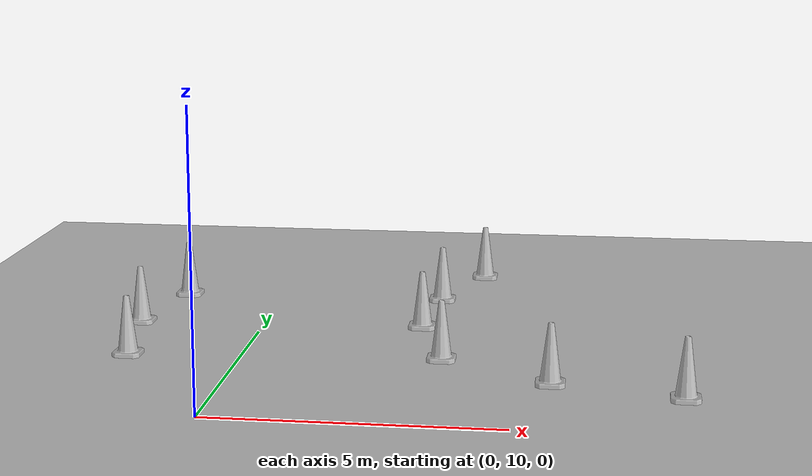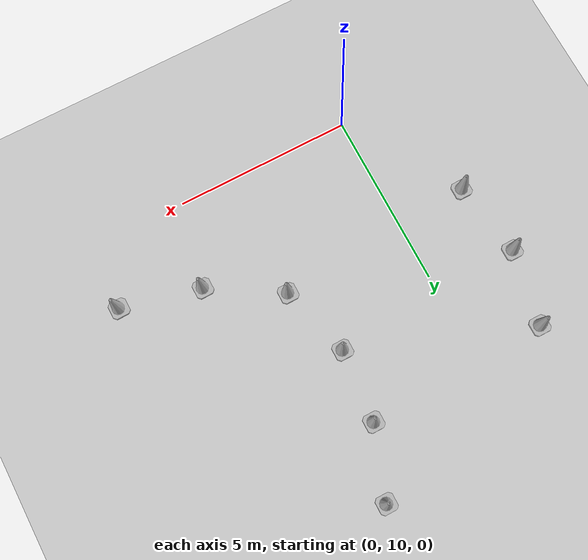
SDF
<sdf version="1.7">
 <world name="default">
  <model name="ground_plane">
   <static>1</static>
   <link name="link">
    <collision name="collision">
     <geometry><plane><normal>0 0 1</normal><size>125 125</size></plane></geometry>
     <surface>
      <contact><collide_bitmask>65535</collide_bitmask></contact>
      <friction><ode><mu>100</mu><mu2>50</mu2></ode></friction>
     </surface>
    </collision>
    <visual name="visual">
     <cast_shadows>0</cast_shadows>
     <geometry><plane><normal>0 0 1</normal><size>125 125</size></plane></geometry>
     <material>
      <script><uri>file://media/materials/scripts/gazebo.material</uri><name>Gazebo/Grey</name></script>
     </material>
    </visual>
   </link>
  </model>
  <model name="Construction Cone 87">
   <link name="link">
    <collision name="collision">
     <geometry>
      <mesh><scale>10 10 10</scale><uri>model://construction_cone/meshes/construction_cone.dae</uri></mesh>
     </geometry>
    </collision>
    <visual name="visual">
     <geometry>
      <mesh><scale>10 10 10</scale><uri>model://construction_cone/meshes/construction_cone.dae</uri></mesh>
     </geometry>
    </visual>
    <inertial>
     <inertia><ixx>1</ixx><ixy>0</ixy><ixz>0</ixz><iyy>1</iyy><iyz>0</iyz><izz>1</izz></inertia>
     <mass>1</mass>
    </inertial>
   </link>
   <pose>3.9134983811912605 19.730355827656048 0 0 0 0</pose>
  </model>
  <model name="Construction Cone 97">
   <link name="link">
    <collision name="collision">
     <geometry>
      <mesh><scale>10 10 10</scale><uri>model://construction_cone/meshes/construction_cone.dae</uri></mesh>
     </geometry>
    </collision>
    <visual name="visual">
     <geometry>
      <mesh><scale>10 10 10</scale><uri>model://construction_cone/meshes/construction_cone.dae</uri></mesh>
     </geometry>
    </visual>
    <inertial>
     <inertia><ixx>1</ixx><ixy>0</ixy><ixz>0</ixz><iyy>1</iyy><iyz>0</iyz><izz>1</izz></inertia>
     <mass>1</mass>
    </inertial>
   </link>
   <pose>3.202702926645806 17.744219464019686 0 0 0 0</pose>
  </model>
  <model name="Construction Cone 100">
   <link name="link">
    <collision name="collision">
     <geometry>
      <mesh><scale>10 10 10</scale><uri>model://construction_cone/meshes/construction_cone.dae</uri></mesh>
     </geometry>
    </collision>
    <visual name="visual">
     <geometry>
      <mesh><scale>10 10 10</scale><uri>model://construction_cone/meshes/construction_cone.dae</uri></mesh>
     </geometry>
    </visual>
    <inertial>
     <inertia><ixx>1</ixx><ixy>0</ixy><ixz>0</ixz><iyy>1</iyy><iyz>0</iyz><izz>1</izz></inertia>
     <mass>1</mass>
    </inertial>
   </link>
   <pose>-1.9567516188087382 17.574855827656044 0 0 0 0</pose>
  </model>
  <model name="Construction Cone 107">
   <link name="link">
    <collision name="collision">
     <geometry>
      <mesh><scale>10 10 10</scale><uri>model://construction_cone/meshes/construction_cone.dae</uri></mesh>
     </geometry>
    </collision>
    <visual name="visual">
     <geometry>
      <mesh><scale>10 10 10</scale><uri>model://construction_cone/meshes/construction_cone.dae</uri></mesh>
     </geometry>
    </visual>
    <inertial>
     <inertia><ixx>1</ixx><ixy>0</ixy><ixz>0</ixz><iyy>1</iyy><iyz>0</iyz><izz>1</izz></inertia>
     <mass>1</mass>
    </inertial>
   </link>
   <pose>3.0186120175548936 15.682401282201504 0 0 0 0</pose>
  </model>
  <model name="Construction Cone 108">
   <link name="link">
    <collision name="collision">
     <geometry>
      <mesh><scale>10 10 10</scale><uri>model://construction_cone/meshes/construction_cone.dae</uri></mesh>
     </geometry>
    </collision>
    <visual name="visual">
     <geometry>
      <mesh><scale>10 10 10</scale><uri>model://construction_cone/meshes/construction_cone.dae</uri></mesh>
     </geometry>
    </visual>
    <inertial>
     <inertia><ixx>1</ixx><ixy>0</ixy><ixz>0</ixz><iyy>1</iyy><iyz>0</iyz><izz>1</izz></inertia>
     <mass>1</mass>
    </inertial>
   </link>
   <pose>-2.37525161880874 15.426427256227477 0 0 0 0</pose>
  </model>
  <model name="Construction Cone 116">
   <link name="link">
    <collision name="collision">
     <geometry>
      <mesh><scale>10 10 10</scale><uri>model://construction_cone/meshes/construction_cone.dae</uri></mesh>
     </geometry>
    </collision>
    <visual name="visual">
     <geometry>
      <mesh><scale>10 10 10</scale><uri>model://construction_cone/meshes/construction_cone.dae</uri></mesh>
     </geometry>
    </visual>
    <inertial>
     <inertia><ixx>1</ixx><ixy>0</ixy><ixz>0</ixz><iyy>1</iyy><iyz>0</iyz><izz>1</izz></inertia>
     <mass>1</mass>
    </inertial>
   </link>
   <pose>3.5831574721003534 13.620583100383321 0 0 0 0</pose>
  </model>
  <model name="Construction Cone 119">
   <link name="link">
    <collision name="collision">
     <geometry>
      <mesh><scale>10 10 10</scale><uri>model://construction_cone/meshes/construction_cone.dae</uri></mesh>
     </geometry>
    </collision>
    <visual name="visual">
     <geometry>
      <mesh><scale>10 10 10</scale><uri>model://construction_cone/meshes/construction_cone.dae</uri></mesh>
     </geometry>
    </visual>
    <inertial>
     <inertia><ixx>1</ixx><ixy>0</ixy><ixz>0</ixz><iyy>1</iyy><iyz>0</iyz><izz>1</izz></inertia>
     <mass>1</mass>
    </inertial>
   </link>
   <pose>-2.0242516188087336 13.254855827656044 0 0 0 0</pose>
  </model>
  <model name="Construction Cone 122">
   <link name="link">
    <collision name="collision">
     <geometry>
      <mesh><scale>10 10 10</scale><uri>model://construction_cone/meshes/construction_cone.dae</uri></mesh>
     </geometry>
    </collision>
    <visual name="visual">
     <geometry>
      <mesh><scale>10 10 10</scale><uri>model://construction_cone/meshes/construction_cone.dae</uri></mesh>
     </geometry>
    </visual>
    <inertial>
     <inertia><ixx>1</ixx><ixy>0</ixy><ixz>0</ixz><iyy>1</iyy><iyz>0</iyz><izz>1</izz></inertia>
     <mass>1</mass>
    </inertial>
   </link>
   <pose>5.549248381191262 12.417855827656048 0 0 0 0</pose>
  </model>
  <model name="Construction Cone 125">
   <link name="link">
    <collision name="collision">
     <geometry>
      <mesh><scale>10 10 10</scale><uri>model://construction_cone/meshes/construction_cone.dae</uri></mesh>
     </geometry>
    </collision>
    <visual name="visual">
     <geometry>
      <mesh><scale>10 10 10</scale><uri>model://construction_cone/meshes/construction_cone.dae</uri></mesh>
     </geometry>
    </visual>
    <inertial>
     <inertia><ixx>1</ixx><ixy>0</ixy><ixz>0</ixz><iyy>1</iyy><iyz>0</iyz><izz>1</izz></inertia>
     <mass>1</mass>
    </inertial>
   </link>
   <pose>7.790248381191262 11.864355827656048 0 0 0 0</pose>
  </model>
 </world>
</sdf>
